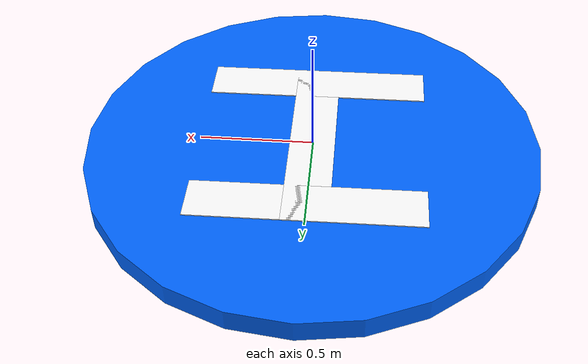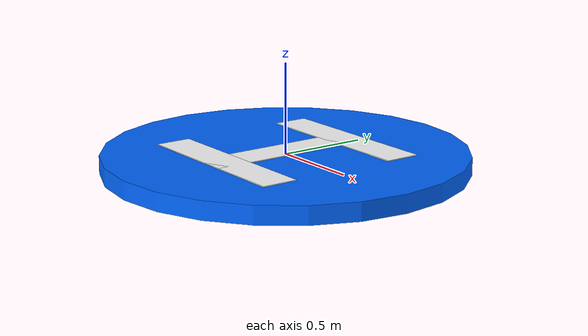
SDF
<?xml version="1.0" ?>
<sdf version="1.7">

<model name="VertiPort">

<static>true</static>

<link name='link'>

<visual name='barra_izq'>
    <pose>0 -0.4 0.02 0 0 0</pose>
    <geometry>
      <box>
        <size>1 .2 .01</size>
      </box>
    </geometry>
    <material>
      <ambient>1 1 1 1</ambient>
      <diffuse>1 1 1 1</diffuse>
    </material>
</visual>

<visual name='barra_der'>
  <pose>0 0.4 0.02 0 0 0</pose>
  <geometry>
    <box>
      <size>1 .2 .01</size>
    </box>
  </geometry>
  <material>
    <ambient>1 1 1 1</ambient>
    <diffuse>1 1 1 1</diffuse>
  </material>
</visual>

<visual name='travesanho'>
  <pose>0 0 0.02 0 0 0</pose>
  <geometry>
    <box>
      <size>.2 1 .01</size>
    </box>
  </geometry>
  <material>
    <ambient>1 1 1 1</ambient>
    <diffuse>1 1 1 1</diffuse>
  </material>
</visual>

<visual name="circulo">
    <pose>0 0 -0.03 0 0 0</pose>
    <geometry>
        <cylinder>
            <radius>1</radius>
            <length>.1</length>
        </cylinder>
    </geometry>
    <material>
        <ambient>0 0.4 1 1</ambient>  <!--color Red Green Blue Alpha [0-1] -->
        <diffuse>0 0.4 1 1</diffuse>
    </material>
</visual>

<collision name="circulo_col">
    <pose>0 0 -0.03 0 0 0</pose>
    <geometry>
        <cylinder>
            <radius>1</radius>
            <length>.1</length>
        </cylinder>
    </geometry>
    <surface>
        <friction>
            <ode>
            <mu>0.5</mu>
            <mu2>0.5</mu2>
            </ode>
        </friction>
    </surface>
</collision>

</link>

</model>

</sdf>
